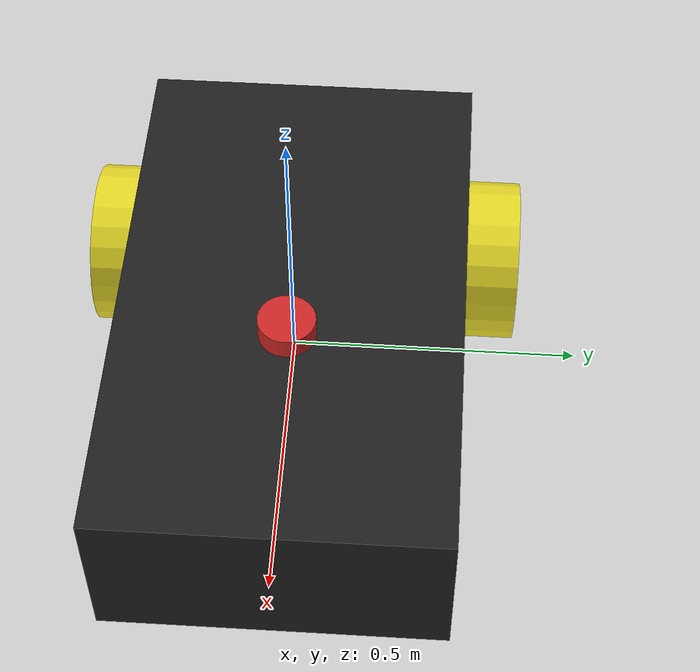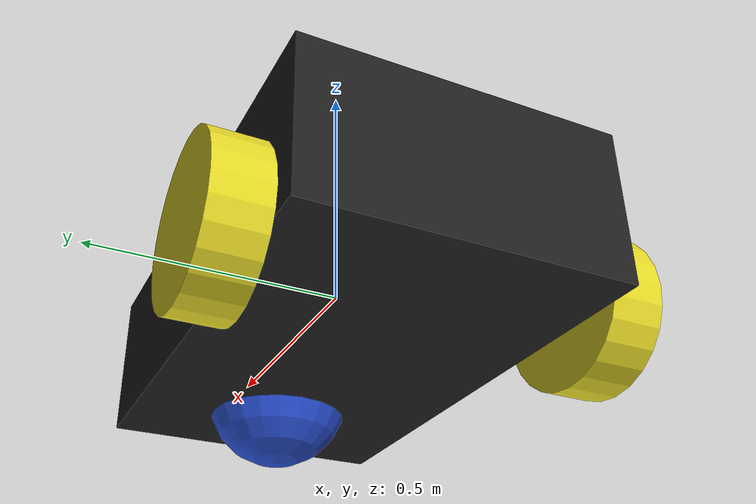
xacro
<?xml version="1.0"?>
<robot name="differential_drive_robot" xmlns:xacro="http://www.ros.org/wiki/xacro">
  <!-- Properties -->
  <xacro:property name="body_link_x_dim" value="1"/>
  <xacro:property name="body_link_y_dim" value="0.6"/>
  <xacro:property name="body_link_z_dim" value="0.3"/>
  <xacro:property name="wheel_link_radius" value="0.15"/>
  <xacro:property name="wheel_link_length" value="0.1"/>
  <xacro:property name="wheel_link_z_location" value="-0.1"/>
  <xacro:property name="caster_link_radius" value="0.15"/>
  <xacro:property name="caster_link_z_location" value="-0.1"/>
  <xacro:property name="body_density" value="2710.0"/>
  <xacro:property name="wheel_density" value="2710.0"/>
  <xacro:property name="caster_density" value="2710.0"/>
  <xacro:property name="pi_constant" value="3.14159265"/>
  <xacro:property name="body_mass" value="${body_density * body_link_x_dim * body_link_y_dim * body_link_z_dim}"/>
  <xacro:property name="wheel_mass" value="${wheel_density * pi_constant * wheel_link_radius * wheel_link_radius * wheel_link_length}"/>
  <xacro:property name="caster_mass" value="${caster_density * (4.0/3.0) * pi_constant * caster_link_radius * caster_link_radius * caster_link_radius}"/>
  <xacro:property name="Iz_wheel" value="${0.5 * wheel_mass * wheel_link_radius * wheel_link_radius}"/>
  <xacro:property name="I_wheel" value="${(1.0/12.0) * wheel_mass * (3.0 * wheel_link_radius * wheel_link_radius + wheel_link_length * wheel_link_length)}"/>
  <xacro:property name="I_caster" value="${(2.0/5.0) * caster_mass * caster_link_radius * caster_link_radius}"/>

  <!-- Macros for inertial properties -->
  <xacro:macro name="inertia_wheel">
    <inertial>
      <origin rpy="0 0 0" xyz="0 0 0"/>
      <mass value="${wheel_mass}"/>
      <inertia ixx="${I_wheel}" ixy="0.0" ixz="0.0" iyy="${I_wheel}" iyz="0.0" izz="${Iz_wheel}"/>
    </inertial>
  </xacro:macro>

  <xacro:macro name="inertia_caster">
    <inertial>
      <origin rpy="0 0 0" xyz="0 0 0"/>
      <mass value="${caster_mass}"/>
      <inertia ixx="${I_caster}" ixy="0.0" ixz="0.0" iyy="${I_caster}" iyz="0.0" izz="${I_caster}"/>
    </inertial>
  </xacro:macro>

  <xacro:macro name="inertial_cylinder" params="mass length radius">
    <inertial>
      <origin xyz="0 0 0" rpy="0 0 0"/>
      <mass value="${mass}"/>
      <inertia
          ixx="${0.5 * mass * radius * radius}"
          ixy="0.0"
          ixz="0.0"
          iyy="${0.5 * mass * radius * radius}"
          iyz="0.0"
          izz="${(1.0/12.0) * mass * (3 * radius * radius + length * length)}"/>
    </inertial>
  </xacro:macro>

  <!-- Include Gazebo-specific properties -->
  <xacro:include filename="$(find diffbot_gazebo_control)/urdf/robot.gazebo"/>

  <!-- Main body -->
  <link name="body_link">
    <visual>
      <origin rpy="0 0 0" xyz="0 0 0"/>
      <geometry>
        <box size="${body_link_x_dim} ${body_link_y_dim} ${body_link_z_dim}"/>
      </geometry>
    </visual>
    <collision>
      <origin rpy="0 0 0" xyz="0 0 0"/>
      <geometry>
        <box size="${body_link_x_dim} ${body_link_y_dim} ${body_link_z_dim}"/>
      </geometry>
    </collision>
    <inertial>
      <origin rpy="0 0 0" xyz="0 0 0"/>
      <mass value="${body_mass}"/>
      <inertia
        ixx="${(1.0/12.0) * body_mass * (body_link_y_dim * body_link_y_dim + body_link_z_dim * body_link_z_dim)}"
        ixy="0.0"
        ixz="0.0"
        iyy="${(1.0/12.0) * body_mass * (body_link_x_dim * body_link_x_dim + body_link_z_dim * body_link_z_dim)}"
        iyz="0.0"
        izz="${(1.0/12.0) * body_mass * (body_link_x_dim * body_link_x_dim + body_link_y_dim * body_link_y_dim)}"/>
    </inertial>
  </link>

  <!-- Left wheel joint and link (wheel2) -->
  <joint name="wheel2_joint" type="continuous">
    <parent link="body_link"/>
    <child link="wheel2_link"/>
    <origin xyz="${-2 * wheel_link_radius} ${body_link_y_dim/2 + wheel_link_length/2} ${wheel_link_z_location}" rpy="0 0 0"/>
    <axis xyz="0 1 0"/>
    <limit effort="1000" velocity="1000"/>
    <dynamics damping="1.0" friction="1.0"/>
  </joint>

  <link name="wheel2_link">
    <visual>
      <origin rpy="1.570795 0 0" xyz="0 0 0"/>
      <geometry>
        <cylinder length="${wheel_link_length}" radius="${wheel_link_radius}"/>
      </geometry>
    </visual>
    <collision>
      <origin rpy="1.570795 0 0" xyz="0 0 0"/>
      <geometry>
        <cylinder length="${wheel_link_length}" radius="${wheel_link_radius}"/>
      </geometry>
    </collision>
    <xacro:inertia_wheel/>
  </link>

  <!-- Right wheel joint and link (wheel1) -->
  <joint name="wheel1_joint" type="continuous">
    <parent link="body_link"/>
    <child link="wheel1_link"/>
    <origin xyz="${-2 * wheel_link_radius} ${-body_link_y_dim/2 - wheel_link_length/2} ${wheel_link_z_location}" rpy="0 0 0"/>
    <axis xyz="0 1 0"/>
    <limit effort="1000" velocity="1000"/>
    <dynamics damping="1.0" friction="1.0"/>
  </joint>

  <link name="wheel1_link">
    <visual>
      <origin rpy="1.570795 0 0" xyz="0 0 0"/>
      <geometry>
        <cylinder length="${wheel_link_length}" radius="${wheel_link_radius}"/>
      </geometry>
    </visual>
    <collision>
      <origin rpy="1.570795 0 0" xyz="0 0 0"/>
      <geometry>
        <cylinder length="${wheel_link_length}" radius="${wheel_link_radius}"/>
      </geometry>
    </collision>
    <xacro:inertia_wheel/>
  </link>

  <!-- Caster joint and link -->
  <joint name="caster_joint" type="fixed">
    <parent link="body_link"/>
    <child link="caster_link"/>
    <origin xyz="${2 * caster_link_radius} 0 ${caster_link_z_location}" rpy="0 0 0"/>
  </joint>

  <link name="caster_link">
    <visual>
      <origin rpy="0 0 0" xyz="0 0 0"/>
      <geometry>
        <sphere radius="${caster_link_radius}"/>
      </geometry>
    </visual>
    <collision>
      <origin rpy="0 0 0" xyz="0 0 0"/>
      <geometry>
        <sphere radius="${caster_link_radius}"/>
      </geometry>
    </collision>
    <xacro:inertia_caster/>
  </link>

  <!-- LiDAR Sensor Joint and Link -->
  <joint name="laser_joint" type="fixed">
    <parent link="body_link"/>
    <child link="laser_frame"/>
    <origin xyz="0.1 0 0.175" rpy="0 0 0"/>
  </joint>

  <link name="laser_frame">
    <visual>
      <geometry>
        <cylinder radius="0.05" length="0.04"/>
      </geometry>
      <material name="red"/>
    </visual>
    <collision>
      <geometry>
        <cylinder radius="0.05" length="0.04"/>
      </geometry>
    </collision>
    <xacro:inertial_cylinder mass="0.1" length="0.04" radius="0.05"/>
  </link>

  <!-- ros2_control configuration for effort control on wheel joints -->
  <ros2_control name="GazeboSystem" type="system">
    <hardware>
      <plugin>gazebo_ros2_control/GazeboSystem</plugin>
    </hardware>
    <joint name="wheel1_joint">
      <command_interface name="effort"/>
      <state_interface name="position"/>
      <state_interface name="velocity"/>
      <state_interface name="effort"/>
    </joint>
    <joint name="wheel2_joint">
      <command_interface name="effort"/>
      <state_interface name="position"/>
      <state_interface name="velocity"/>
      <state_interface name="effort"/>
    </joint>
  </ros2_control>

  <!-- Gazebo plugin for ros2_control -->
  <gazebo>
    <plugin name="gazebo_ros2_control" filename="libgazebo_ros2_control.so">
      <robot_namespace>/</robot_namespace>
      <parameters>$(find diffbot_gazebo_control)/config/my_controllers.yaml</parameters>
    </plugin>
  </gazebo>
</robot>
